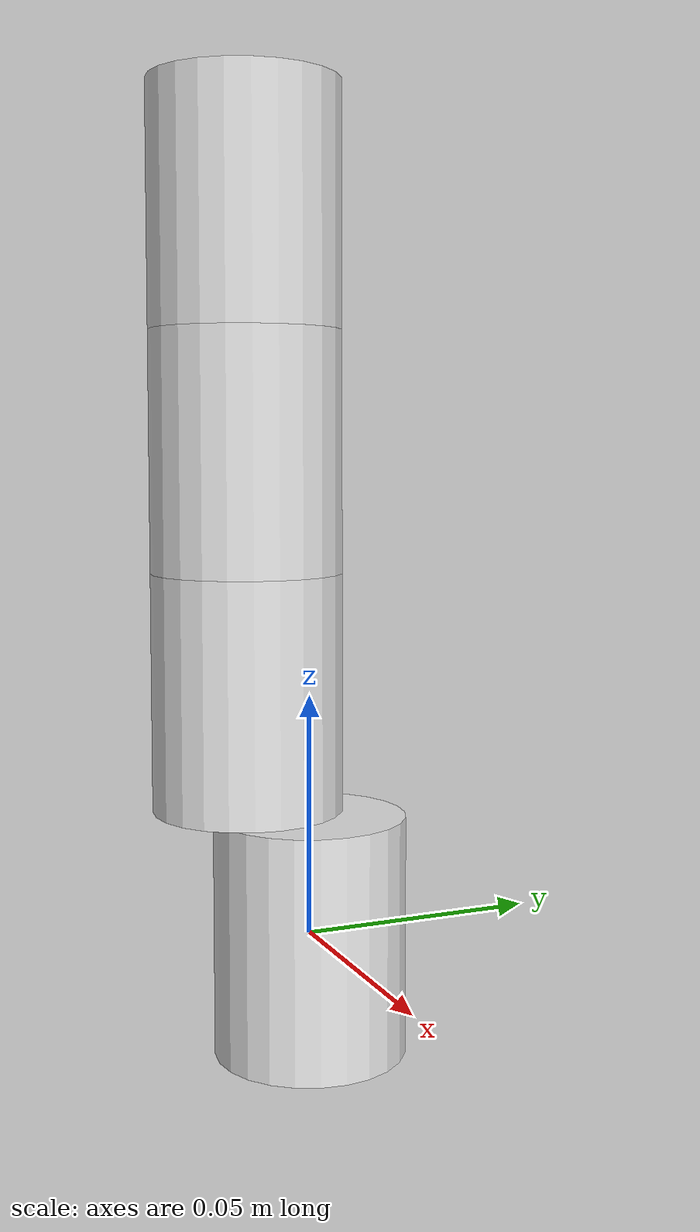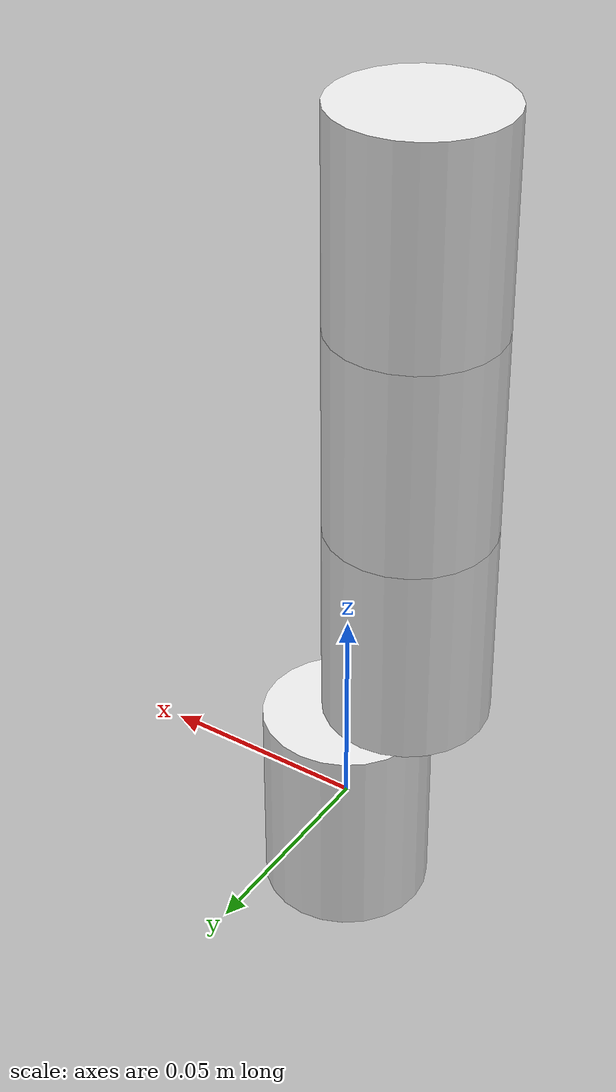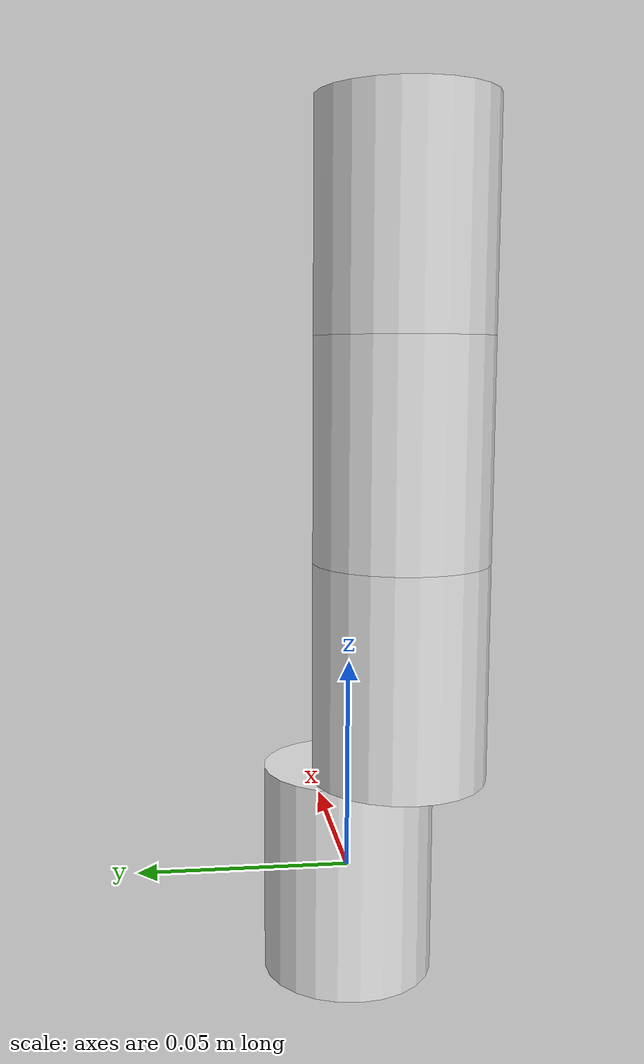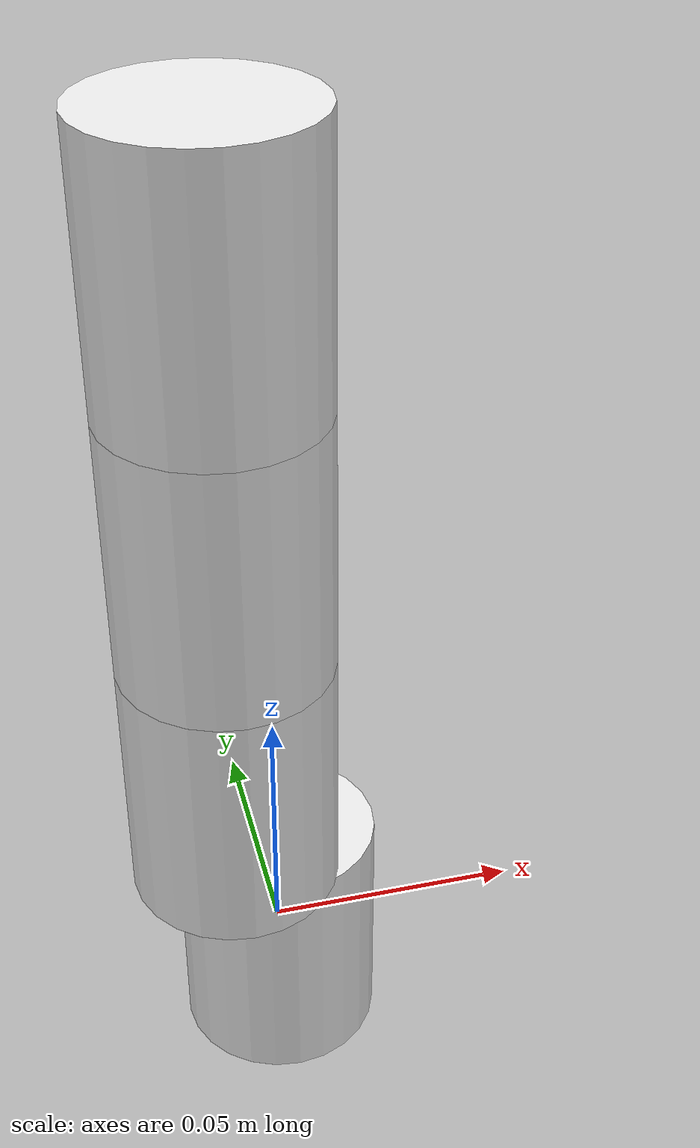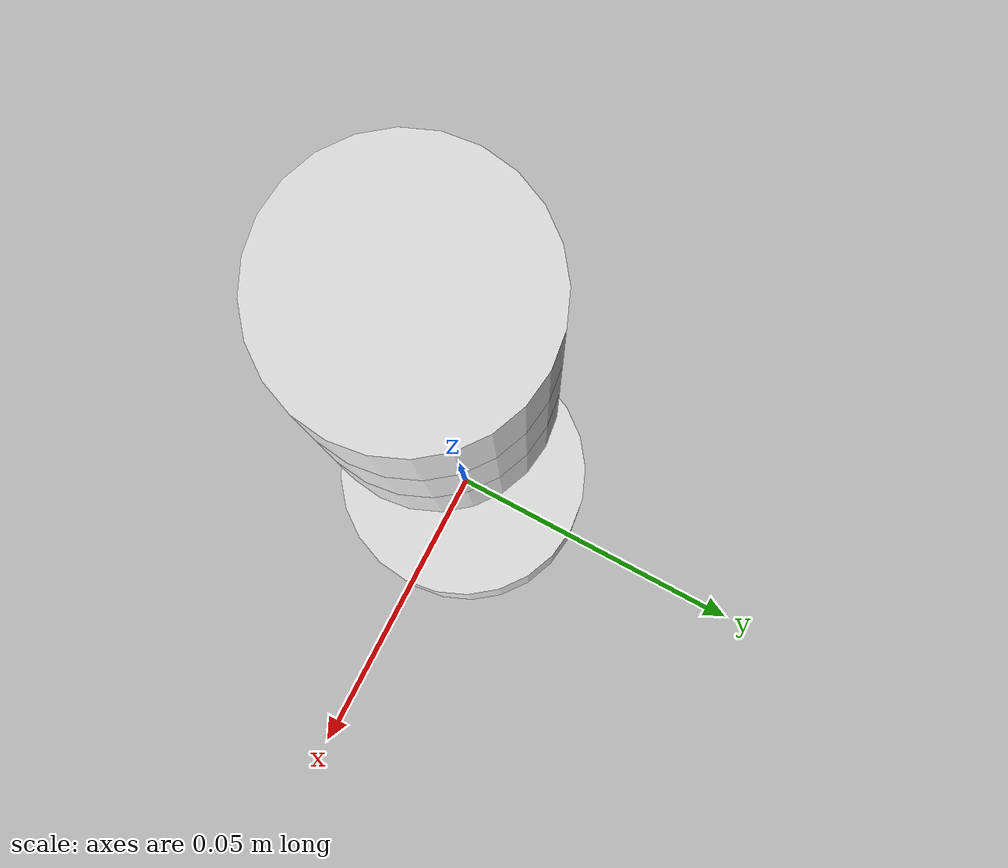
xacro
<?xml version="1.0"?>
<robot xmlns:xacro="http://www.ros.org/wiki/xacro" name="cable">

	<xacro:property name="radius" value="0.02" />
	<xacro:property name="length" value="0.05" />
	<xacro:property name="offset" value="-0.01" />

	<gazebo>
        <plugin name="gazebo_ros_control" filename="libgazebo_ros_control.so">
            <robotNamespace>/cable</robotNamespace>
        </plugin>
    </gazebo>

    <link name="base_link">
    	<visual>
            <origin rpy="0 0 0" xyz="0 0 0"/>
            <geometry>
                <cylinder radius="${radius}" length="${length}"/>
            </geometry>
        </visual>
        <collision>
            <origin rpy="0 0 0" xyz="0 0 0"/>
            <geometry>
                <cylinder radius="${radius}" length="${length}"/>
            </geometry>
        </collision>
	</link>
    <gazebo reference="base_link">
        <kp>500.0</kp>
        <kd>500.0</kd>
        <mu1>10.0</mu1>
        <mu2>10.0</mu2>
        <material>Gazebo/White</material>
    </gazebo>

    <link name="cable_link_yaw_0">
        <visual>
            <origin rpy="0 0 0" xyz="${offset} ${offset} 0"/>
            <geometry>
                <cylinder radius="${radius}" length="${length}"/>
            </geometry>
        </visual>
        <collision>
            <origin rpy="0 0 0" xyz="${offset} ${offset} 0"/>
            <geometry>
                <cylinder radius="${radius}" length="${length}"/>
            </geometry>
        </collision>
        <inertial>
		    <origin xyz="0 0 0" rpy="0 0 0"/>
		    <mass value="0.01" />
		    <inertia ixx="3.08333333333e-06" ixy="0.0" ixz="0.0" iyy="3.08333333333e-06" iyz="0.0" izz="2e-06"/>
		</inertial>
	</link>
    <gazebo reference="cable_link_yaw_0">
        <kp>500.0</kp>
        <kd>500.0</kd>
        <mu1>10.0</mu1>
        <mu2>10.0</mu2>
        <material>Gazebo/White</material>
    </gazebo>

    <joint name="base_link_joint" type="continuous">
    	<parent link="base_link"/>
	    <child link="cable_link_yaw_0"/>
	    <axis xyz="1 0 0"/>
	    <origin xyz="0 0 ${length}" rpy="0 0 0"/>
    </joint>

    <!-- Macro to create many cable links -->
    <!-- Cable links each have a number, and each number has a "roll" and "yaw" joint -->
    <xacro:macro name="cable_links" params="number parent">
    	<link name="cable_link_roll_${number}">
    		<visual>
    			<origin rpy="0 0 0" xyz="${offset} ${offset} 0"/>
    			<geometry>
    				<cylinder radius="${radius}" length="${length}"/>
    			</geometry>
        	</visual>
        	<collision>
		        <origin rpy="0 0 0" xyz="${offset} ${offset} 0"/>
		        <geometry>
		            <cylinder radius="${radius}" length="${length}"/>
		        </geometry>
		    </collision>
		    <inertial>
		        <origin xyz="0 0 0" rpy="0 0 0"/>
		        <mass value="0.01" />
		        <inertia ixx="3.08333333333e-06" ixy="0.0" ixz="0.0" iyy="3.08333333333e-06" iyz="0.0" izz="2e-06"/>
		    </inertial>
    	</link>
    	<gazebo reference="cable_link_roll_${number}">
		    <kp>500.0</kp>
		    <kd>500.0</kd>
		    <mu1>10.0</mu1>
		    <mu2>10.0</mu2>
		    <material>Gazebo/White</material>
		</gazebo>

		<link name="cable_link_yaw_${number}">
    		<visual>
    			<origin rpy="0 0 0" xyz="${offset} ${offset} 0"/>
    			<geometry>
    				<cylinder radius="${radius}" length="${length}"/>
    			</geometry>
        	</visual>
        	<collision>
		        <origin rpy="0 0 0" xyz="${offset} ${offset} 0"/>
		        <geometry>
		            <cylinder radius="${radius}" length="${length}"/>
		        </geometry>
		    </collision>
		    <inertial>
		        <origin xyz="0 0 0" rpy="0 0 0"/>
		        <mass value="0.01" />
		        <inertia ixx="3.08333333333e-06" ixy="0.0" ixz="0.0" iyy="3.08333333333e-06" iyz="0.0" izz="2e-06"/>
		    </inertial>
    	</link>
    	<gazebo reference="cable_link_yaw_${number}">
		    <kp>500.0</kp>
		    <kd>500.0</kd>
		    <mu1>10.0</mu1>
		    <mu2>10.0</mu2>
		    <material>Gazebo/White</material>
		</gazebo>

    	<joint name="cable_joint_roll_${number}" type="continuous">
    		<parent link="cable_link_yaw_${parent}"/>
		    <child link="cable_link_roll_${number}"/>
		    <axis xyz="1 0 0"/>
		    <origin xyz="0 0 ${length}" rpy="0 0 0"/>
    	</joint>
    	<joint name="cable_joint_yaw_${number}" type="continuous">
    		<parent link="cable_link_roll_${number}"/>
		    <child link="cable_link_yaw_${number}"/>
		    <axis xyz="0 0 1"/>
		    <origin xyz="0 0 ${length}" rpy="0 0 0"/>
    	</joint>

    </xacro:macro>

    <xacro:cable_links number="1" parent="0"/>

</robot>
